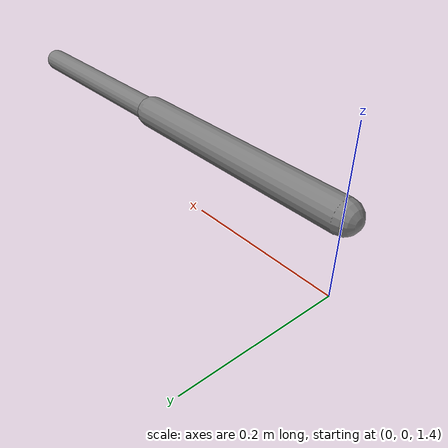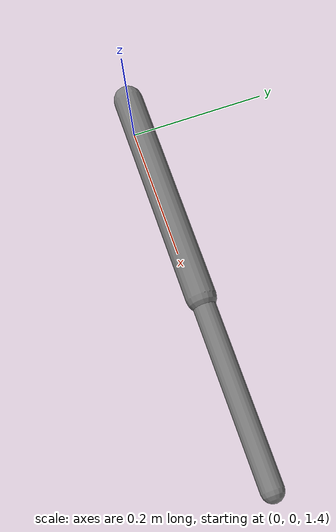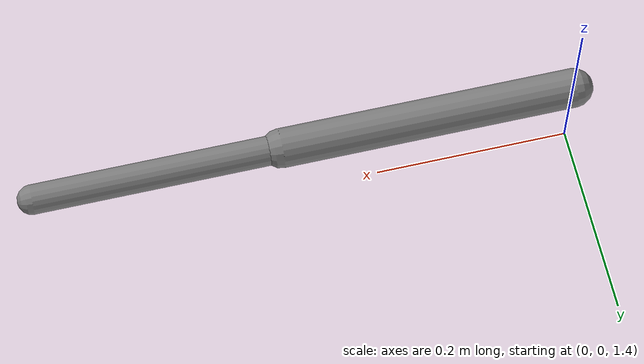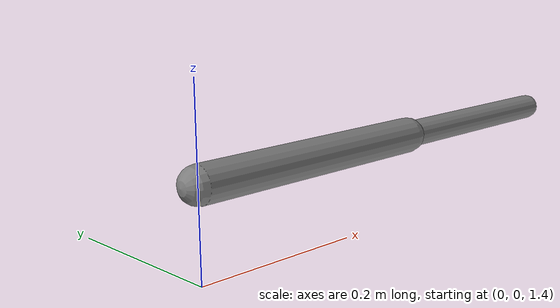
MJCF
<mujoco model="tendon_model">
  <option gravity="0 0 -9.81" timestep="0.002"/>
  <worldbody>
    <body name="upper" pos="0 0 1.5">
      <joint name="joint1" type="hinge" axis="0 1 0"
             stiffness="5" springref="0.3" damping="0.3"/>
      <geom name="upper_geom" type="capsule" fromto="0 0 0 0.3 0 0"
            size="0.02" mass="1.0"/>

      <body name="lower" pos="0.3 0 0">
        <joint name="joint2" type="hinge" axis="0 1 0"
               damping="0.2"/>
        <geom name="lower_geom" type="capsule" fromto="0 0 0 0.25 0 0"
              size="0.015" mass="0.5"/>
      </body>
    </body>
  </worldbody>

  <tendon>
    <fixed name="coupling" stiffness="15" damping="1"
           springlength="0.1"
           limited="true" range="-0.5 0.5">
      <joint joint="joint1" coef="1.0"/>
      <joint joint="joint2" coef="-0.5"/>
    </fixed>
  </tendon>
</mujoco>
